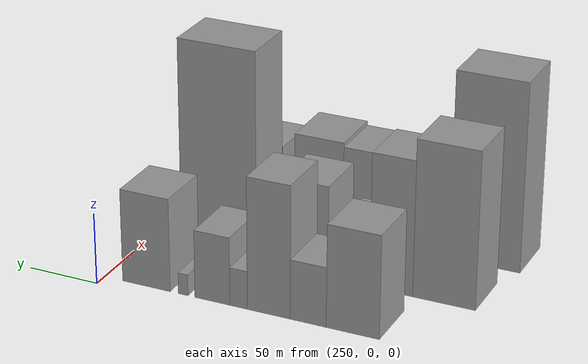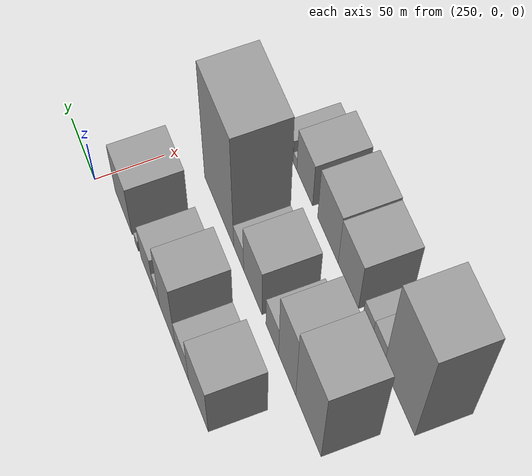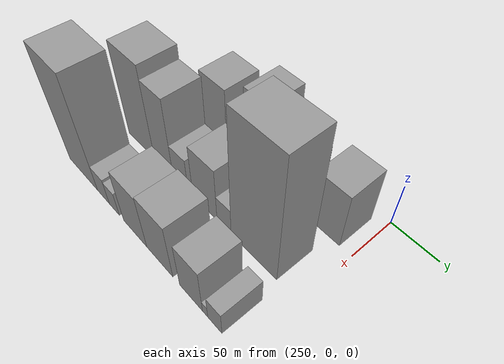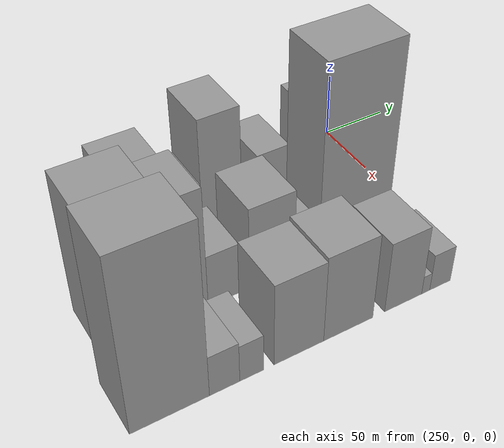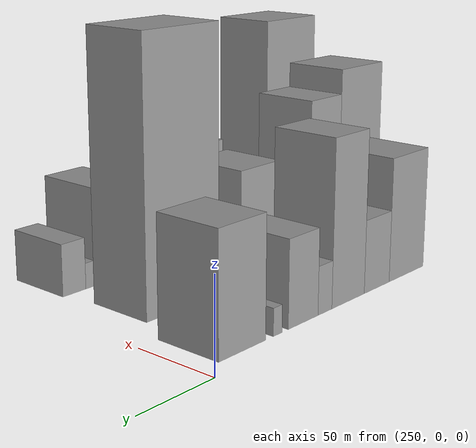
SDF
<sdf version="1.6">
 <world name="default">
  <model name="building_178">
   <static>1</static>
   <pose>280.0000 -176.3149 0 0.000000 0.000000 0.000000</pose>
   <link name="link">
    <pose>0 0 36.00 0 0 0</pose>
    <collision name="collision"><geometry><box><size>40.0000 36.0139 72.0000</size></box></geometry></collision>
    <visual name="visual">
     <cast_shadows>0</cast_shadows>
     <geometry><box><size>40.0000 36.0139 72.0000</size></box></geometry>
     <material>
      <script>
       <uri>model://grey_wall/materials/scripts</uri>
       <uri>model://grey_wall/materials/textures</uri>
       <name>vrc/grey_wall</name>
      </script>
     </material>
    </visual>
   </link>
  </model>
  <model name="building_179">
   <static>1</static>
   <pose>280.0000 -145.9693 0 0.000000 0.000000 0.000000</pose>
   <link name="link">
    <pose>0 0 21.00 0 0 0</pose>
    <collision name="collision"><geometry><box><size>40.0000 24.6773 42.0000</size></box></geometry></collision>
    <visual name="visual">
     <cast_shadows>0</cast_shadows>
     <geometry><box><size>40.0000 24.6773 42.0000</size></box></geometry>
     <material>
      <script>
       <uri>model://grey_wall/materials/scripts</uri>
       <uri>model://grey_wall/materials/textures</uri>
       <name>vrc/grey_wall</name>
      </script>
     </material>
    </visual>
   </link>
  </model>
  <model name="building_180">
   <static>1</static>
   <pose>280.0000 -118.5868 0 0.000000 0.000000 0.000000</pose>
   <link name="link">
    <pose>0 0 46.50 0 0 0</pose>
    <collision name="collision"><geometry><box><size>40.0000 30.0878 93.0000</size></box></geometry></collision>
    <visual name="visual">
     <cast_shadows>0</cast_shadows>
     <geometry><box><size>40.0000 30.0878 93.0000</size></box></geometry>
     <material>
      <script>
       <uri>model://grey_wall/materials/scripts</uri>
       <uri>model://grey_wall/materials/textures</uri>
       <name>vrc/grey_wall</name>
      </script>
     </material>
    </visual>
   </link>
  </model>
  <model name="building_181">
   <static>1</static>
   <pose>280.0000 -97.4114 0 0.000000 0.000000 0.000000</pose>
   <link name="link">
    <pose>0 0 13.50 0 0 0</pose>
    <collision name="collision"><geometry><box><size>40.0000 12.2630 27.0000</size></box></geometry></collision>
    <visual name="visual">
     <cast_shadows>0</cast_shadows>
     <geometry><box><size>40.0000 12.2630 27.0000</size></box></geometry>
     <material>
      <script>
       <uri>model://grey_wall/materials/scripts</uri>
       <uri>model://grey_wall/materials/textures</uri>
       <name>vrc/grey_wall</name>
      </script>
     </material>
    </visual>
   </link>
  </model>
  <model name="building_182">
   <static>1</static>
   <pose>280.0000 -78.7803 0 0.000000 0.000000 0.000000</pose>
   <link name="link">
    <pose>0 0 24.00 0 0 0</pose>
    <collision name="collision"><geometry><box><size>40.0000 24.9993 48.0000</size></box></geometry></collision>
    <visual name="visual">
     <cast_shadows>0</cast_shadows>
     <geometry><box><size>40.0000 24.9993 48.0000</size></box></geometry>
     <material>
      <script>
       <uri>model://grey_wall/materials/scripts</uri>
       <uri>model://grey_wall/materials/textures</uri>
       <name>vrc/grey_wall</name>
      </script>
     </material>
    </visual>
   </link>
  </model>
  <model name="building_183">
   <static>1</static>
   <pose>280.0000 -57.8114 0 0.000000 0.000000 0.000000</pose>
   <link name="link">
    <pose>0 0 7.50 0 0 0</pose>
    <collision name="collision"><geometry><box><size>40.0000 6.9386 15.0000</size></box></geometry></collision>
    <visual name="visual">
     <cast_shadows>0</cast_shadows>
     <geometry><box><size>40.0000 6.9386 15.0000</size></box></geometry>
     <material>
      <script>
       <uri>model://grey_wall/materials/scripts</uri>
       <uri>model://grey_wall/materials/textures</uri>
       <name>vrc/grey_wall</name>
      </script>
     </material>
    </visual>
   </link>
  </model>
  <model name="building_184">
   <static>1</static>
   <pose>280.0000 -30.9352 0 0.000000 0.000000 0.000000</pose>
   <link name="link">
    <pose>0 0 33.00 0 0 0</pose>
    <collision name="collision"><geometry><box><size>40.0000 34.8137 66.0000</size></box></geometry></collision>
    <visual name="visual">
     <cast_shadows>0</cast_shadows>
     <geometry><box><size>40.0000 34.8137 66.0000</size></box></geometry>
     <material>
      <script>
       <uri>model://grey_wall/materials/scripts</uri>
       <uri>model://grey_wall/materials/textures</uri>
       <name>vrc/grey_wall</name>
      </script>
     </material>
    </visual>
   </link>
  </model>
  <model name="building_236">
   <static>1</static>
   <pose>340.0000 -213.4699 0 0.000000 0.000000 0.000000</pose>
   <link name="link">
    <pose>0 0 55.50 0 0 0</pose>
    <collision name="collision"><geometry><box><size>40.0000 42.7634 111.0000</size></box></geometry></collision>
    <visual name="visual">
     <cast_shadows>0</cast_shadows>
     <geometry><box><size>40.0000 42.7634 111.0000</size></box></geometry>
     <material>
      <script>
       <uri>model://grey_wall/materials/scripts</uri>
       <uri>model://grey_wall/materials/textures</uri>
       <name>vrc/grey_wall</name>
      </script>
     </material>
    </visual>
   </link>
  </model>
  <model name="building_237">
   <static>1</static>
   <pose>340.0000 -177.1933 0 0.000000 0.000000 0.000000</pose>
   <link name="link">
    <pose>0 0 48.00 0 0 0</pose>
    <collision name="collision"><geometry><box><size>40.0000 29.7897 96.0000</size></box></geometry></collision>
    <visual name="visual">
     <cast_shadows>0</cast_shadows>
     <geometry><box><size>40.0000 29.7897 96.0000</size></box></geometry>
     <material>
      <script>
       <uri>model://grey_wall/materials/scripts</uri>
       <uri>model://grey_wall/materials/textures</uri>
       <name>vrc/grey_wall</name>
      </script>
     </material>
    </visual>
   </link>
  </model>
  <model name="building_238">
   <static>1</static>
   <pose>340.0000 -151.0169 0 0.000000 0.000000 0.000000</pose>
   <link name="link">
    <pose>0 0 21.00 0 0 0</pose>
    <collision name="collision"><geometry><box><size>40.0000 22.5632 42.0000</size></box></geometry></collision>
    <visual name="visual">
     <cast_shadows>0</cast_shadows>
     <geometry><box><size>40.0000 22.5632 42.0000</size></box></geometry>
     <material>
      <script>
       <uri>model://grey_wall/materials/scripts</uri>
       <uri>model://grey_wall/materials/textures</uri>
       <name>vrc/grey_wall</name>
      </script>
     </material>
    </visual>
   </link>
  </model>
  <model name="building_239">
   <static>1</static>
   <pose>340.0000 -116.0071 0 0.000000 0.000000 0.000000</pose>
   <link name="link">
    <pose>0 0 33.00 0 0 0</pose>
    <collision name="collision"><geometry><box><size>40.0000 33.4564 66.0000</size></box></geometry></collision>
    <visual name="visual">
     <cast_shadows>0</cast_shadows>
     <geometry><box><size>40.0000 33.4564 66.0000</size></box></geometry>
     <material>
      <script>
       <uri>model://grey_wall/materials/scripts</uri>
       <uri>model://grey_wall/materials/textures</uri>
       <name>vrc/grey_wall</name>
      </script>
     </material>
    </visual>
   </link>
  </model>
  <model name="building_240">
   <static>1</static>
   <pose>340.0000 -90.0394 0 0.000000 0.000000 0.000000</pose>
   <link name="link">
    <pose>0 0 16.50 0 0 0</pose>
    <collision name="collision"><geometry><box><size>40.0000 18.4788 33.0000</size></box></geometry></collision>
    <visual name="visual">
     <cast_shadows>0</cast_shadows>
     <geometry><box><size>40.0000 18.4788 33.0000</size></box></geometry>
     <material>
      <script>
       <uri>model://grey_wall/materials/scripts</uri>
       <uri>model://grey_wall/materials/textures</uri>
       <name>vrc/grey_wall</name>
      </script>
     </material>
    </visual>
   </link>
  </model>
  <model name="building_241">
   <static>1</static>
   <pose>340.0000 -52.9819 0 0.000000 0.000000 0.000000</pose>
   <link name="link">
    <pose>0 0 75.00 0 0 0</pose>
    <collision name="collision"><geometry><box><size>40.0000 55.6363 150.0000</size></box></geometry></collision>
    <visual name="visual">
     <cast_shadows>0</cast_shadows>
     <geometry><box><size>40.0000 55.6363 150.0000</size></box></geometry>
     <material>
      <script>
       <uri>model://grey_wall/materials/scripts</uri>
       <uri>model://grey_wall/materials/textures</uri>
       <name>vrc/grey_wall</name>
      </script>
     </material>
    </visual>
   </link>
  </model>
  <model name="building_287">
   <static>1</static>
   <pose>400.0000 -218.7611 0 0.000000 0.000000 0.000000</pose>
   <link name="link">
    <pose>0 0 67.50 0 0 0</pose>
    <collision name="collision"><geometry><box><size>40.0000 49.3358 135.0000</size></box></geometry></collision>
    <visual name="visual">
     <cast_shadows>0</cast_shadows>
     <geometry><box><size>40.0000 49.3358 135.0000</size></box></geometry>
     <material>
      <script>
       <uri>model://grey_wall/materials/scripts</uri>
       <uri>model://grey_wall/materials/textures</uri>
       <name>vrc/grey_wall</name>
      </script>
     </material>
    </visual>
   </link>
  </model>
  <model name="building_288">
   <static>1</static>
   <pose>400.0000 -184.2697 0 0.000000 0.000000 0.000000</pose>
   <link name="link">
    <pose>0 0 16.50 0 0 0</pose>
    <collision name="collision"><geometry><box><size>40.0000 19.6469 33.0000</size></box></geometry></collision>
    <visual name="visual">
     <cast_shadows>0</cast_shadows>
     <geometry><box><size>40.0000 19.6469 33.0000</size></box></geometry>
     <material>
      <script>
       <uri>model://grey_wall/materials/scripts</uri>
       <uri>model://grey_wall/materials/textures</uri>
       <name>vrc/grey_wall</name>
      </script>
     </material>
    </visual>
   </link>
  </model>
  <model name="building_289">
   <static>1</static>
   <pose>400.0000 -166.4934 0 0.000000 0.000000 0.000000</pose>
   <link name="link">
    <pose>0 0 15.00 0 0 0</pose>
    <collision name="collision"><geometry><box><size>40.0000 15.9056 30.0000</size></box></geometry></collision>
    <visual name="visual">
     <cast_shadows>0</cast_shadows>
     <geometry><box><size>40.0000 15.9056 30.0000</size></box></geometry>
     <material>
      <script>
       <uri>model://grey_wall/materials/scripts</uri>
       <uri>model://grey_wall/materials/textures</uri>
       <name>vrc/grey_wall</name>
      </script>
     </material>
    </visual>
   </link>
  </model>
  <model name="building_290">
   <static>1</static>
   <pose>400.0000 -134.2088 0 0.000000 0.000000 0.000000</pose>
   <link name="link">
    <pose>0 0 33.00 0 0 0</pose>
    <collision name="collision"><geometry><box><size>40.0000 34.6636 66.0000</size></box></geometry></collision>
    <visual name="visual">
     <cast_shadows>0</cast_shadows>
     <geometry><box><size>40.0000 34.6636 66.0000</size></box></geometry>
     <material>
      <script>
       <uri>model://grey_wall/materials/scripts</uri>
       <uri>model://grey_wall/materials/textures</uri>
       <name>vrc/grey_wall</name>
      </script>
     </material>
    </visual>
   </link>
  </model>
  <model name="building_291">
   <static>1</static>
   <pose>400.0000 -98.8703 0 0.000000 0.000000 0.000000</pose>
   <link name="link">
    <pose>0 0 34.50 0 0 0</pose>
    <collision name="collision"><geometry><box><size>40.0000 36.0134 69.0000</size></box></geometry></collision>
    <visual name="visual">
     <cast_shadows>0</cast_shadows>
     <geometry><box><size>40.0000 36.0134 69.0000</size></box></geometry>
     <material>
      <script>
       <uri>model://grey_wall/materials/scripts</uri>
       <uri>model://grey_wall/materials/textures</uri>
       <name>vrc/grey_wall</name>
      </script>
     </material>
    </visual>
   </link>
  </model>
  <model name="building_292">
   <static>1</static>
   <pose>400.0000 -57.5211 0 0.000000 0.000000 0.000000</pose>
   <link name="link">
    <pose>0 0 28.50 0 0 0</pose>
    <collision name="collision"><geometry><box><size>40.0000 28.6850 57.0000</size></box></geometry></collision>
    <visual name="visual">
     <cast_shadows>0</cast_shadows>
     <geometry><box><size>40.0000 28.6850 57.0000</size></box></geometry>
     <material>
      <script>
       <uri>model://grey_wall/materials/scripts</uri>
       <uri>model://grey_wall/materials/textures</uri>
       <name>vrc/grey_wall</name>
      </script>
     </material>
    </visual>
   </link>
  </model>
  <model name="building_293">
   <static>1</static>
   <pose>400.0000 -39.9709 0 0.000000 0.000000 0.000000</pose>
   <link name="link">
    <pose>0 0 7.50 0 0 0</pose>
    <collision name="collision"><geometry><box><size>40.0000 6.4152 15.0000</size></box></geometry></collision>
    <visual name="visual">
     <cast_shadows>0</cast_shadows>
     <geometry><box><size>40.0000 6.4152 15.0000</size></box></geometry>
     <material>
      <script>
       <uri>model://grey_wall/materials/scripts</uri>
       <uri>model://grey_wall/materials/textures</uri>
       <name>vrc/grey_wall</name>
      </script>
     </material>
    </visual>
   </link>
  </model>
  <model name="building_294">
   <static>1</static>
   <pose>400.0000 -28.4716 0 0.000000 0.000000 0.000000</pose>
   <link name="link">
    <pose>0 0 15.00 0 0 0</pose>
    <collision name="collision"><geometry><box><size>40.0000 16.5833 30.0000</size></box></geometry></collision>
    <visual name="visual">
     <cast_shadows>0</cast_shadows>
     <geometry><box><size>40.0000 16.5833 30.0000</size></box></geometry>
     <material>
      <script>
       <uri>model://grey_wall/materials/scripts</uri>
       <uri>model://grey_wall/materials/textures</uri>
       <name>vrc/grey_wall</name>
      </script>
     </material>
    </visual>
   </link>
  </model>
 </world>
</sdf>
